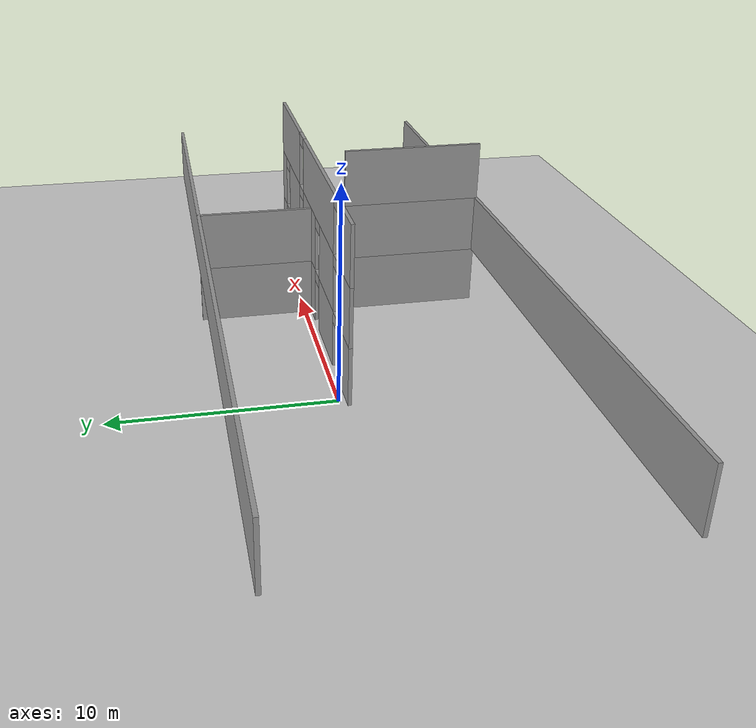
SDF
<sdf version="1.7">
 <world name="default">
  <model name="ground_plane">
   <static>1</static>
   <link name="link">
    <collision name="collision">
     <geometry><plane><normal>0 0 1</normal><size>100 100</size></plane></geometry>
     <surface>
      <contact><collide_bitmask>65535</collide_bitmask></contact>
      <friction><ode><mu>100</mu><mu2>50</mu2></ode></friction>
     </surface>
    </collision>
    <visual name="visual">
     <cast_shadows>0</cast_shadows>
     <geometry><plane><normal>0 0 1</normal><size>100 100</size></plane></geometry>
     <material>
      <script><uri>file://media/materials/scripts/gazebo.material</uri><name>Gazebo/Grey</name></script>
     </material>
    </visual>
   </link>
  </model>
  <model name="floor4plan_transp">
   <link name="Wall_105">
    <pose>3.98949 1.21683 7.5 0 -0 0</pose>
    <visual name="Wall_105_Visual_0">
     <pose>-7.04797 0 1.25 0 -0 0</pose>
     <geometry><box><size>2.06598 0.15 2.5</size></box></geometry>
     <material>
      <script><uri>file://media/materials/scripts/gazebo.material</uri><name>Gazebo/Grey</name></script>
      <ambient>1 1 1 1</ambient>
      <shader type="pixel"/>
     </material>
     <meta><layer>3</layer></meta>
    </visual>
    <visual name="Wall_105_Visual_1">
     <pose>-1.51338 0 1.25 0 -0 0</pose>
     <geometry><box><size>7.00319 0.15 2.5</size></box></geometry>
     <material>
      <script><uri>file://media/materials/scripts/gazebo.material</uri><name>Gazebo/Grey</name></script>
      <ambient>1 1 1 1</ambient>
      <shader type="pixel"/>
     </material>
     <meta><layer>3</layer></meta>
    </visual>
    <visual name="Wall_105_Visual_2">
     <pose>5.53458 0 1.25 0 -0 0</pose>
     <geometry><box><size>5.09275 0.15 2.5</size></box></geometry>
     <material>
      <script><uri>file://media/materials/scripts/gazebo.material</uri><name>Gazebo/Grey</name></script>
      <ambient>1 1 1 1</ambient>
      <shader type="pixel"/>
     </material>
     <meta><layer>3</layer></meta>
    </visual>
    <visual name="Wall_105_Visual_3">
     <pose>-5.51498 0 2.25 0 -0 0</pose>
     <geometry><box><size>1 0.15 0.5</size></box></geometry>
     <material>
      <script><uri>file://media/materials/scripts/gazebo.material</uri><name>Gazebo/Grey</name></script>
      <ambient>1 1 1 1</ambient>
      <shader type="pixel"/>
     </material>
     <meta><layer>3</layer></meta>
    </visual>
    <visual name="Wall_105_Visual_4">
     <pose>2.48821 0 2.25 0 -0 0</pose>
     <geometry><box><size>1 0.15 0.5</size></box></geometry>
     <material>
      <script><uri>file://media/materials/scripts/gazebo.material</uri><name>Gazebo/Grey</name></script>
      <ambient>1 1 1 1</ambient>
      <shader type="pixel"/>
     </material>
     <meta><layer>3</layer></meta>
    </visual>
    <collision name="Wall_105_Collision_0">
     <pose>-7.04797 0 1.25 0 -0 0</pose>
     <geometry><box><size>2.06598 0.15 2.5</size></box></geometry>
     <surface>
      <friction>
       <ode><mu>1</mu><mu2>1</mu2><fdir1>0 0 0</fdir1><slip1>0</slip1><slip2>0</slip2></ode>
       <torsional>
        <coefficient>1</coefficient>
        <patch_radius>0</patch_radius>
        <surface_radius>0</surface_radius>
        <use_patch_radius>1</use_patch_radius>
        <ode><slip>0</slip></ode>
       </torsional>
      </friction>
      <bounce><restitution_coefficient>0</restitution_coefficient><threshold>1e+06</threshold></bounce>
      <contact>
       <collide_without_contact>0</collide_without_contact>
       <collide_without_contact_bitmask>1</collide_without_contact_bitmask>
       <collide_bitmask>1</collide_bitmask>
       <ode>
        <soft_cfm>0</soft_cfm>
        <soft_erp>0.2</soft_erp>
        <kp>1e+13</kp>
        <kd>1</kd>
        <max_vel>0.01</max_vel>
        <min_depth>0</min_depth>
       </ode>
       <bullet>
        <split_impulse>1</split_impulse>
        <split_impulse_penetration_threshold>-0.01</split_impulse_penetration_threshold>
        <soft_cfm>0</soft_cfm>
        <soft_erp>0.2</soft_erp>
        <kp>1e+13</kp>
        <kd>1</kd>
       </bullet>
      </contact>
     </surface>
    </collision>
    <collision name="Wall_105_Collision_1">
     <pose>-1.51338 0 1.25 0 -0 0</pose>
     <geometry><box><size>7.00319 0.15 2.5</size></box></geometry>
     <surface>
      <friction>
       <ode><mu>1</mu><mu2>1</mu2><fdir1>0 0 0</fdir1><slip1>0</slip1><slip2>0</slip2></ode>
       <torsional>
        <coefficient>1</coefficient>
        <patch_radius>0</patch_radius>
        <surface_radius>0</surface_radius>
        <use_patch_radius>1</use_patch_radius>
        <ode><slip>0</slip></ode>
       </torsional>
      </friction>
      <bounce><restitution_coefficient>0</restitution_coefficient><threshold>1e+06</threshold></bounce>
      <contact>
       <collide_without_contact>0</collide_without_contact>
       <collide_without_contact_bitmask>1</collide_without_contact_bitmask>
       <collide_bitmask>1</collide_bitmask>
       <ode>
        <soft_cfm>0</soft_cfm>
        <soft_erp>0.2</soft_erp>
        <kp>1e+13</kp>
        <kd>1</kd>
        <max_vel>0.01</max_vel>
        <min_depth>0</min_depth>
       </ode>
       <bullet>
        <split_impulse>1</split_impulse>
        <split_impulse_penetration_threshold>-0.01</split_impulse_penetration_threshold>
        <soft_cfm>0</soft_cfm>
        <soft_erp>0.2</soft_erp>
        <kp>1e+13</kp>
        <kd>1</kd>
       </bullet>
      </contact>
     </surface>
    </collision>
    <collision name="Wall_105_Collision_2">
     <pose>5.53458 0 1.25 0 -0 0</pose>
     <geometry><box><size>5.09275 0.15 2.5</size></box></geometry>
     <surface>
      <friction>
       <ode><mu>1</mu><mu2>1</mu2><fdir1>0 0 0</fdir1><slip1>0</slip1><slip2>0</slip2></ode>
       <torsional>
        <coefficient>1</coefficient>
        <patch_radius>0</patch_radius>
        <surface_radius>0</surface_radius>
        <use_patch_radius>1</use_patch_radius>
        <ode><slip>0</slip></ode>
       </torsional>
      </friction>
      <bounce><restitution_coefficient>0</restitution_coefficient><threshold>1e+06</threshold></bounce>
      <contact>
       <collide_without_contact>0</collide_without_contact>
       <collide_without_contact_bitmask>1</collide_without_contact_bitmask>
       <collide_bitmask>1</collide_bitmask>
       <ode>
        <soft_cfm>0</soft_cfm>
        <soft_erp>0.2</soft_erp>
        <kp>1e+13</kp>
        <kd>1</kd>
        <max_vel>0.01</max_vel>
        <min_depth>0</min_depth>
       </ode>
       <bullet>
        <split_impulse>1</split_impulse>
        <split_impulse_penetration_threshold>-0.01</split_impulse_penetration_threshold>
        <soft_cfm>0</soft_cfm>
        <soft_erp>0.2</soft_erp>
        <kp>1e+13</kp>
        <kd>1</kd>
       </bullet>
      </contact>
     </surface>
    </collision>
    <collision name="Wall_105_Collision_3">
     <pose>-5.51498 0 2.25 0 -0 0</pose>
     <geometry><box><size>1 0.15 0.5</size></box></geometry>
     <surface>
      <friction>
       <ode><mu>1</mu><mu2>1</mu2><fdir1>0 0 0</fdir1><slip1>0</slip1><slip2>0</slip2></ode>
       <torsional>
        <coefficient>1</coefficient>
        <patch_radius>0</patch_radius>
        <surface_radius>0</surface_radius>
        <use_patch_radius>1</use_patch_radius>
        <ode><slip>0</slip></ode>
       </torsional>
      </friction>
      <bounce><restitution_coefficient>0</restitution_coefficient><threshold>1e+06</threshold></bounce>
      <contact>
       <collide_without_contact>0</collide_without_contact>
       <collide_without_contact_bitmask>1</collide_without_contact_bitmask>
       <collide_bitmask>1</collide_bitmask>
       <ode>
        <soft_cfm>0</soft_cfm>
        <soft_erp>0.2</soft_erp>
        <kp>1e+13</kp>
        <kd>1</kd>
        <max_vel>0.01</max_vel>
        <min_depth>0</min_depth>
       </ode>
       <bullet>
        <split_impulse>1</split_impulse>
        <split_impulse_penetration_threshold>-0.01</split_impulse_penetration_threshold>
        <soft_cfm>0</soft_cfm>
        <soft_erp>0.2</soft_erp>
        <kp>1e+13</kp>
        <kd>1</kd>
       </bullet>
      </contact>
     </surface>
    </collision>
    <collision name="Wall_105_Collision_4">
     <pose>2.48821 0 2.25 0 -0 0</pose>
     <geometry><box><size>1 0.15 0.5</size></box></geometry>
     <surface>
      <friction>
       <ode><mu>1</mu><mu2>1</mu2><fdir1>0 0 0</fdir1><slip1>0</slip1><slip2>0</slip2></ode>
       <torsional>
        <coefficient>1</coefficient>
        <patch_radius>0</patch_radius>
        <surface_radius>0</surface_radius>
        <use_patch_radius>1</use_patch_radius>
        <ode><slip>0</slip></ode>
       </torsional>
      </friction>
      <bounce><restitution_coefficient>0</restitution_coefficient><threshold>1e+06</threshold></bounce>
      <contact>
       <collide_without_contact>0</collide_without_contact>
       <collide_without_contact_bitmask>1</collide_without_contact_bitmask>
       <collide_bitmask>1</collide_bitmask>
       <ode>
        <soft_cfm>0</soft_cfm>
        <soft_erp>0.2</soft_erp>
        <kp>1e+13</kp>
        <kd>1</kd>
        <max_vel>0.01</max_vel>
        <min_depth>0</min_depth>
       </ode>
       <bullet>
        <split_impulse>1</split_impulse>
        <split_impulse_penetration_threshold>-0.01</split_impulse_penetration_threshold>
        <soft_cfm>0</soft_cfm>
        <soft_erp>0.2</soft_erp>
        <kp>1e+13</kp>
        <kd>1</kd>
       </bullet>
      </contact>
     </surface>
    </collision>
   </link>
   <link name="Wall_120">
    <pose>3.95647 -3.18853 7.5 0 0 -1.5708</pose>
    <visual name="Wall_120_Visual">
     <pose>0 0 1.25 0 -0 0</pose>
     <geometry><box><size>6 0.15 2.5</size></box></geometry>
     <material>
      <script><uri>file://media/materials/scripts/gazebo.material</uri><name>Gazebo/Grey</name></script>
      <ambient>1 1 1 1</ambient>
      <shader type="pixel"/>
     </material>
     <meta><layer>3</layer></meta>
    </visual>
    <collision name="Wall_120_Collision">
     <pose>0 0 1.25 0 -0 0</pose>
     <geometry><box><size>6 0.15 2.5</size></box></geometry>
     <surface>
      <friction>
       <ode><mu>1</mu><mu2>1</mu2><fdir1>0 0 0</fdir1><slip1>0</slip1><slip2>0</slip2></ode>
       <torsional>
        <coefficient>1</coefficient>
        <patch_radius>0</patch_radius>
        <surface_radius>0</surface_radius>
        <use_patch_radius>1</use_patch_radius>
        <ode><slip>0</slip></ode>
       </torsional>
      </friction>
      <bounce><restitution_coefficient>0</restitution_coefficient><threshold>1e+06</threshold></bounce>
      <contact>
       <collide_without_contact>0</collide_without_contact>
       <collide_without_contact_bitmask>1</collide_without_contact_bitmask>
       <collide_bitmask>1</collide_bitmask>
       <ode>
        <soft_cfm>0</soft_cfm>
        <soft_erp>0.2</soft_erp>
        <kp>1e+13</kp>
        <kd>1</kd>
        <max_vel>0.01</max_vel>
        <min_depth>0</min_depth>
       </ode>
       <bullet>
        <split_impulse>1</split_impulse>
        <split_impulse_penetration_threshold>-0.01</split_impulse_penetration_threshold>
        <soft_cfm>0</soft_cfm>
        <soft_erp>0.2</soft_erp>
        <kp>1e+13</kp>
        <kd>1</kd>
       </bullet>
      </contact>
     </surface>
    </collision>
   </link>
   <link name="Wall_55">
    <pose>3.98949 1.21683 2.5 0 -0 0</pose>
    <visual name="Wall_55_Visual_0">
     <pose>-7.04797 0 1.25 0 -0 0</pose>
     <geometry><box><size>2.06598 0.15 2.5</size></box></geometry>
     <material>
      <script><uri>file://media/materials/scripts/gazebo.material</uri><name>Gazebo/Grey</name></script>
      <ambient>1 1 1 1</ambient>
      <shader type="pixel"/>
     </material>
     <meta><layer>1</layer></meta>
    </visual>
    <visual name="Wall_55_Visual_1">
     <pose>-3.50262 0 1.25 0 -0 0</pose>
     <geometry><box><size>3.02473 0.15 2.5</size></box></geometry>
     <material>
      <script><uri>file://media/materials/scripts/gazebo.material</uri><name>Gazebo/Grey</name></script>
      <ambient>1 1 1 1</ambient>
      <shader type="pixel"/>
     </material>
     <meta><layer>1</layer></meta>
    </visual>
    <visual name="Wall_55_Visual_2">
     <pose>0.510543 0 1.25 0 -0 0</pose>
     <geometry><box><size>3.0016 0.15 2.5</size></box></geometry>
     <material>
      <script><uri>file://media/materials/scripts/gazebo.material</uri><name>Gazebo/Grey</name></script>
      <ambient>1 1 1 1</ambient>
      <shader type="pixel"/>
     </material>
     <meta><layer>1</layer></meta>
    </visual>
    <visual name="Wall_55_Visual_3">
     <pose>4.50057 0 1.25 0 -0 0</pose>
     <geometry><box><size>2.97846 0.15 2.5</size></box></geometry>
     <material>
      <script><uri>file://media/materials/scripts/gazebo.material</uri><name>Gazebo/Grey</name></script>
      <ambient>1 1 1 1</ambient>
      <shader type="pixel"/>
     </material>
     <meta><layer>1</layer></meta>
    </visual>
    <visual name="Wall_55_Visual_4">
     <pose>7.53538 0 1.25 0 -0 0</pose>
     <geometry><box><size>1.09115 0.15 2.5</size></box></geometry>
     <material>
      <script><uri>file://media/materials/scripts/gazebo.material</uri><name>Gazebo/Grey</name></script>
      <ambient>1 1 1 1</ambient>
      <shader type="pixel"/>
     </material>
     <meta><layer>1</layer></meta>
    </visual>
    <visual name="Wall_55_Visual_5">
     <pose>-5.51498 0 2.25 0 -0 0</pose>
     <geometry><box><size>1 0.15 0.5</size></box></geometry>
     <material>
      <script><uri>file://media/materials/scripts/gazebo.material</uri><name>Gazebo/Grey</name></script>
      <ambient>1 1 1 1</ambient>
      <shader type="pixel"/>
     </material>
     <meta><layer>1</layer></meta>
    </visual>
    <visual name="Wall_55_Visual_6">
     <pose>-1.49026 0 2.25 0 -0 0</pose>
     <geometry><box><size>1 0.15 0.5</size></box></geometry>
     <material>
      <script><uri>file://media/materials/scripts/gazebo.material</uri><name>Gazebo/Grey</name></script>
      <ambient>1 1 1 1</ambient>
      <shader type="pixel"/>
     </material>
     <meta><layer>1</layer></meta>
    </visual>
    <visual name="Wall_55_Visual_7">
     <pose>2.51134 0 2.25 0 -0 0</pose>
     <geometry><box><size>1 0.15 0.5</size></box></geometry>
     <material>
      <script><uri>file://media/materials/scripts/gazebo.material</uri><name>Gazebo/Grey</name></script>
      <ambient>1 1 1 1</ambient>
      <shader type="pixel"/>
     </material>
     <meta><layer>1</layer></meta>
    </visual>
    <visual name="Wall_55_Visual_8">
     <pose>6.4898 0 2.25 0 -0 0</pose>
     <geometry><box><size>1 0.15 0.5</size></box></geometry>
     <material>
      <script><uri>file://media/materials/scripts/gazebo.material</uri><name>Gazebo/Grey</name></script>
      <ambient>1 1 1 1</ambient>
      <shader type="pixel"/>
     </material>
     <meta><layer>1</layer></meta>
    </visual>
    <collision name="Wall_55_Collision_0">
     <pose>-7.04797 0 1.25 0 -0 0</pose>
     <geometry><box><size>2.06598 0.15 2.5</size></box></geometry>
     <surface>
      <friction>
       <ode><mu>1</mu><mu2>1</mu2><fdir1>0 0 0</fdir1><slip1>0</slip1><slip2>0</slip2></ode>
       <torsional>
        <coefficient>1</coefficient>
        <patch_radius>0</patch_radius>
        <surface_radius>0</surface_radius>
        <use_patch_radius>1</use_patch_radius>
        <ode><slip>0</slip></ode>
       </torsional>
      </friction>
      <bounce><restitution_coefficient>0</restitution_coefficient><threshold>1e+06</threshold></bounce>
      <contact>
       <collide_without_contact>0</collide_without_contact>
       <collide_without_contact_bitmask>1</collide_without_contact_bitmask>
       <collide_bitmask>1</collide_bitmask>
       <ode>
        <soft_cfm>0</soft_cfm>
        <soft_erp>0.2</soft_erp>
        <kp>1e+13</kp>
        <kd>1</kd>
        <max_vel>0.01</max_vel>
        <min_depth>0</min_depth>
       </ode>
       <bullet>
        <split_impulse>1</split_impulse>
        <split_impulse_penetration_threshold>-0.01</split_impulse_penetration_threshold>
        <soft_cfm>0</soft_cfm>
        <soft_erp>0.2</soft_erp>
        <kp>1e+13</kp>
        <kd>1</kd>
       </bullet>
      </contact>
     </surface>
    </collision>
    <collision name="Wall_55_Collision_1">
     <pose>-3.50262 0 1.25 0 -0 0</pose>
     <geometry><box><size>3.02473 0.15 2.5</size></box></geometry>
     <surface>
      <friction>
       <ode><mu>1</mu><mu2>1</mu2><fdir1>0 0 0</fdir1><slip1>0</slip1><slip2>0</slip2></ode>
       <torsional>
        <coefficient>1</coefficient>
        <patch_radius>0</patch_radius>
        <surface_radius>0</surface_radius>
        <use_patch_radius>1</use_patch_radius>
        <ode><slip>0</slip></ode>
       </torsional>
      </friction>
      <bounce><restitution_coefficient>0</restitution_coefficient><threshold>1e+06</threshold></bounce>
      <contact>
       <collide_without_contact>0</collide_without_contact>
       <collide_without_contact_bitmask>1</collide_without_contact_bitmask>
       <collide_bitmask>1</collide_bitmask>
       <ode>
        <soft_cfm>0</soft_cfm>
        <soft_erp>0.2</soft_erp>
        <kp>1e+13</kp>
        <kd>1</kd>
        <max_vel>0.01</max_vel>
        <min_depth>0</min_depth>
       </ode>
       <bullet>
        <split_impulse>1</split_impulse>
        <split_impulse_penetration_threshold>-0.01</split_impulse_penetration_threshold>
        <soft_cfm>0</soft_cfm>
        <soft_erp>0.2</soft_erp>
        <kp>1e+13</kp>
        <kd>1</kd>
       </bullet>
      </contact>
     </surface>
    </collision>
    <collision name="Wall_55_Collision_3">
     <pose>4.50057 0 1.25 0 -0 0</pose>
     <geometry><box><size>2.97846 0.15 2.5</size></box></geometry>
     <surface>
      <friction>
       <ode><mu>1</mu><mu2>1</mu2><fdir1>0 0 0</fdir1><slip1>0</slip1><slip2>0</slip2></ode>
       <torsional>
        <coefficient>1</coefficient>
        <patch_radius>0</patch_radius>
        <surface_radius>0</surface_radius>
        <use_patch_radius>1</use_patch_radius>
        <ode><slip>0</slip></ode>
       </torsional>
      </friction>
      <bounce><restitution_coefficient>0</restitution_coefficient><threshold>1e+06</threshold></bounce>
      <contact>
       <collide_without_contact>0</collide_without_contact>
       <collide_without_contact_bitmask>1</collide_without_contact_bitmask>
       <collide_bitmask>1</collide_bitmask>
       <ode>
        <soft_cfm>0</soft_cfm>
        <soft_erp>0.2</soft_erp>
        <kp>1e+13</kp>
        <kd>1</kd>
        <max_vel>0.01</max_vel>
        <min_depth>0</min_depth>
       </ode>
       <bullet>
        <split_impulse>1</split_impulse>
        <split_impulse_penetration_threshold>-0.01</split_impulse_penetration_threshold>
        <soft_cfm>0</soft_cfm>
        <soft_erp>0.2</soft_erp>
        <kp>1e+13</kp>
        <kd>1</kd>
       </bullet>
      </contact>
     </surface>
    </collision>
    <collision name="Wall_55_Collision_2">
     <pose>0.510543 0 1.25 0 -0 0</pose>
     <geometry><box><size>3.0016 0.15 2.5</size></box></geometry>
     <surface>
      <friction>
       <ode><mu>1</mu><mu2>1</mu2><fdir1>0 0 0</fdir1><slip1>0</slip1><slip2>0</slip2></ode>
       <torsional>
        <coefficient>1</coefficient>
        <patch_radius>0</patch_radius>
        <surface_radius>0</surface_radius>
        <use_patch_radius>1</use_patch_radius>
        <ode><slip>0</slip></ode>
       </torsional>
      </friction>
      <bounce><restitution_coefficient>0</restitution_coefficient><threshold>1e+06</threshold></bounce>
      <contact>
       <collide_without_contact>0</collide_without_contact>
       <collide_without_contact_bitmask>1</collide_without_contact_bitmask>
       <collide_bitmask>1</collide_bitmask>
       <ode>
        <soft_cfm>0</soft_cfm>
        <soft_erp>0.2</soft_erp>
        <kp>1e+13</kp>
        <kd>1</kd>
        <max_vel>0.01</max_vel>
        <min_depth>0</min_depth>
       </ode>
       <bullet>
        <split_impulse>1</split_impulse>
        <split_impulse_penetration_threshold>-0.01</split_impulse_penetration_threshold>
        <soft_cfm>0</soft_cfm>
        <soft_erp>0.2</soft_erp>
        <kp>1e+13</kp>
        <kd>1</kd>
       </bullet>
      </contact>
     </surface>
    </collision>
    <collision name="Wall_55_Collision_4">
     <pose>7.53538 0 1.25 0 -0 0</pose>
     <geometry><box><size>1.09115 0.15 2.5</size></box></geometry>
     <surface>
      <friction>
       <ode><mu>1</mu><mu2>1</mu2><fdir1>0 0 0</fdir1><slip1>0</slip1><slip2>0</slip2></ode>
       <torsional>
        <coefficient>1</coefficient>
        <patch_radius>0</patch_radius>
        <surface_radius>0</surface_radius>
        <use_patch_radius>1</use_patch_radius>
        <ode><slip>0</slip></ode>
       </torsional>
      </friction>
      <bounce><restitution_coefficient>0</restitution_coefficient><threshold>1e+06</threshold></bounce>
      <contact>
       <collide_without_contact>0</collide_without_contact>
       <collide_without_contact_bitmask>1</collide_without_contact_bitmask>
       <collide_bitmask>1</collide_bitmask>
       <ode>
        <soft_cfm>0</soft_cfm>
        <soft_erp>0.2</soft_erp>
        <kp>1e+13</kp>
        <kd>1</kd>
        <max_vel>0.01</max_vel>
        <min_depth>0</min_depth>
       </ode>
       <bullet>
        <split_impulse>1</split_impulse>
        <split_impulse_penetration_threshold>-0.01</split_impulse_penetration_threshold>
        <soft_cfm>0</soft_cfm>
        <soft_erp>0.2</soft_erp>
        <kp>1e+13</kp>
        <kd>1</kd>
       </bullet>
      </contact>
     </surface>
    </collision>
    <collision name="Wall_55_Collision_5">
     <pose>-5.51498 0 2.25 0 -0 0</pose>
     <geometry><box><size>1 0.15 0.5</size></box></geometry>
     <surface>
      <friction>
       <ode><mu>1</mu><mu2>1</mu2><fdir1>0 0 0</fdir1><slip1>0</slip1><slip2>0</slip2></ode>
       <torsional>
        <coefficient>1</coefficient>
        <patch_radius>0</patch_radius>
        <surface_radius>0</surface_radius>
        <use_patch_radius>1</use_patch_radius>
        <ode><slip>0</slip></ode>
       </torsional>
      </friction>
      <bounce><restitution_coefficient>0</restitution_coefficient><threshold>1e+06</threshold></bounce>
      <contact>
       <collide_without_contact>0</collide_without_contact>
       <collide_without_contact_bitmask>1</collide_without_contact_bitmask>
       <collide_bitmask>1</collide_bitmask>
       <ode>
        <soft_cfm>0</soft_cfm>
        <soft_erp>0.2</soft_erp>
        <kp>1e+13</kp>
        <kd>1</kd>
        <max_vel>0.01</max_vel>
        <min_depth>0</min_depth>
       </ode>
       <bullet>
        <split_impulse>1</split_impulse>
        <split_impulse_penetration_threshold>-0.01</split_impulse_penetration_threshold>
        <soft_cfm>0</soft_cfm>
        <soft_erp>0.2</soft_erp>
        <kp>1e+13</kp>
        <kd>1</kd>
       </bullet>
      </contact>
     </surface>
    </collision>
    <collision name="Wall_55_Collision_6">
     <pose>-1.49026 0 2.25 0 -0 0</pose>
     <geometry><box><size>1 0.15 0.5</size></box></geometry>
     <surface>
      <friction>
       <ode><mu>1</mu><mu2>1</mu2><fdir1>0 0 0</fdir1><slip1>0</slip1><slip2>0</slip2></ode>
       <torsional>
        <coefficient>1</coefficient>
        <patch_radius>0</patch_radius>
        <surface_radius>0</surface_radius>
        <use_patch_radius>1</use_patch_radius>
        <ode><slip>0</slip></ode>
       </torsional>
      </friction>
      <bounce><restitution_coefficient>0</restitution_coefficient><threshold>1e+06</threshold></bounce>
      <contact>
       <collide_without_contact>0</collide_without_contact>
       <collide_without_contact_bitmask>1</collide_without_contact_bitmask>
       <collide_bitmask>1</collide_bitmask>
       <ode>
        <soft_cfm>0</soft_cfm>
        <soft_erp>0.2</soft_erp>
        <kp>1e+13</kp>
        <kd>1</kd>
        <max_vel>0.01</max_vel>
        <min_depth>0</min_depth>
       </ode>
       <bullet>
        <split_impulse>1</split_impulse>
        <split_impulse_penetration_threshold>-0.01</split_impulse_penetration_threshold>
        <soft_cfm>0</soft_cfm>
        <soft_erp>0.2</soft_erp>
        <kp>1e+13</kp>
        <kd>1</kd>
       </bullet>
      </contact>
     </surface>
    </collision>
    <collision name="Wall_55_Collision_7">
     <pose>2.51134 0 2.25 0 -0 0</pose>
     <geometry><box><size>1 0.15 0.5</size></box></geometry>
     <surface>
      <friction>
       <ode><mu>1</mu><mu2>1</mu2><fdir1>0 0 0</fdir1><slip1>0</slip1><slip2>0</slip2></ode>
       <torsional>
        <coefficient>1</coefficient>
        <patch_radius>0</patch_radius>
        <surface_radius>0</surface_radius>
        <use_patch_radius>1</use_patch_radius>
        <ode><slip>0</slip></ode>
       </torsional>
      </friction>
      <bounce><restitution_coefficient>0</restitution_coefficient><threshold>1e+06</threshold></bounce>
      <contact>
       <collide_without_contact>0</collide_without_contact>
       <collide_without_contact_bitmask>1</collide_without_contact_bitmask>
       <collide_bitmask>1</collide_bitmask>
       <ode>
        <soft_cfm>0</soft_cfm>
        <soft_erp>0.2</soft_erp>
        <kp>1e+13</kp>
        <kd>1</kd>
        <max_vel>0.01</max_vel>
        <min_depth>0</min_depth>
       </ode>
       <bullet>
        <split_impulse>1</split_impulse>
        <split_impulse_penetration_threshold>-0.01</split_impulse_penetration_threshold>
        <soft_cfm>0</soft_cfm>
        <soft_erp>0.2</soft_erp>
        <kp>1e+13</kp>
        <kd>1</kd>
       </bullet>
      </contact>
     </surface>
    </collision>
    <collision name="Wall_55_Collision_8">
     <pose>6.4898 0 2.25 0 -0 0</pose>
     <geometry><box><size>1 0.15 0.5</size></box></geometry>
     <surface>
      <friction>
       <ode><mu>1</mu><mu2>1</mu2><fdir1>0 0 0</fdir1><slip1>0</slip1><slip2>0</slip2></ode>
       <torsional>
        <coefficient>1</coefficient>
        <patch_radius>0</patch_radius>
        <surface_radius>0</surface_radius>
        <use_patch_radius>1</use_patch_radius>
        <ode><slip>0</slip></ode>
       </torsional>
      </friction>
      <bounce><restitution_coefficient>0</restitution_coefficient><threshold>1e+06</threshold></bounce>
      <contact>
       <collide_without_contact>0</collide_without_contact>
       <collide_without_contact_bitmask>1</collide_without_contact_bitmask>
       <collide_bitmask>1</collide_bitmask>
       <ode>
        <soft_cfm>0</soft_cfm>
        <soft_erp>0.2</soft_erp>
        <kp>1e+13</kp>
        <kd>1</kd>
        <max_vel>0.01</max_vel>
        <min_depth>0</min_depth>
       </ode>
       <bullet>
        <split_impulse>1</split_impulse>
        <split_impulse_penetration_threshold>-0.01</split_impulse_penetration_threshold>
        <soft_cfm>0</soft_cfm>
        <soft_erp>0.2</soft_erp>
        <kp>1e+13</kp>
        <kd>1</kd>
       </bullet>
      </contact>
     </surface>
    </collision>
   </link>
   <link name="Wall_61">
    <pose>3.95647 3.71865 2.5 0 0 -1.5708</pose>
    <visual name="Wall_61_Visual">
     <pose>0 0 1.25 0 -0 0</pose>
     <geometry><box><size>5 0.15 2.5</size></box></geometry>
     <material>
      <script><uri>file://media/materials/scripts/gazebo.material</uri><name>Gazebo/Grey</name></script>
      <ambient>1 1 1 1</ambient>
      <shader type="pixel"/>
     </material>
     <meta><layer>1</layer></meta>
    </visual>
    <collision name="Wall_61_Collision">
     <pose>0 0 1.25 0 -0 0</pose>
     <geometry><box><size>5 0.15 2.5</size></box></geometry>
     <surface>
      <friction>
       <ode><mu>1</mu><mu2>1</mu2><fdir1>0 0 0</fdir1><slip1>0</slip1><slip2>0</slip2></ode>
       <torsional>
        <coefficient>1</coefficient>
        <patch_radius>0</patch_radius>
        <surface_radius>0</surface_radius>
        <use_patch_radius>1</use_patch_radius>
        <ode><slip>0</slip></ode>
       </torsional>
      </friction>
      <bounce><restitution_coefficient>0</restitution_coefficient><threshold>1e+06</threshold></bounce>
      <contact>
       <collide_without_contact>0</collide_without_contact>
       <collide_without_contact_bitmask>1</collide_without_contact_bitmask>
       <collide_bitmask>1</collide_bitmask>
       <ode>
        <soft_cfm>0</soft_cfm>
        <soft_erp>0.2</soft_erp>
        <kp>1e+13</kp>
        <kd>1</kd>
        <max_vel>0.01</max_vel>
        <min_depth>0</min_depth>
       </ode>
       <bullet>
        <split_impulse>1</split_impulse>
        <split_impulse_penetration_threshold>-0.01</split_impulse_penetration_threshold>
        <soft_cfm>0</soft_cfm>
        <soft_erp>0.2</soft_erp>
        <kp>1e+13</kp>
        <kd>1</kd>
       </bullet>
      </contact>
     </surface>
    </collision>
   </link>
   <link name="Wall_70">
    <pose>3.95647 -3.18853 2.5 0 0 -1.5708</pose>
    <visual name="Wall_70_Visual">
     <pose>0 0 1.25 0 -0 0</pose>
     <geometry><box><size>6 0.15 2.5</size></box></geometry>
     <material>
      <script><uri>file://media/materials/scripts/gazebo.material</uri><name>Gazebo/Grey</name></script>
      <ambient>1 1 1 1</ambient>
      <shader type="pixel"/>
     </material>
     <meta><layer>1</layer></meta>
    </visual>
    <collision name="Wall_70_Collision">
     <pose>0 0 1.25 0 -0 0</pose>
     <geometry><box><size>6 0.15 2.5</size></box></geometry>
     <surface>
      <friction>
       <ode><mu>1</mu><mu2>1</mu2><fdir1>0 0 0</fdir1><slip1>0</slip1><slip2>0</slip2></ode>
       <torsional>
        <coefficient>1</coefficient>
        <patch_radius>0</patch_radius>
        <surface_radius>0</surface_radius>
        <use_patch_radius>1</use_patch_radius>
        <ode><slip>0</slip></ode>
       </torsional>
      </friction>
      <bounce><restitution_coefficient>0</restitution_coefficient><threshold>1e+06</threshold></bounce>
      <contact>
       <collide_without_contact>0</collide_without_contact>
       <collide_without_contact_bitmask>1</collide_without_contact_bitmask>
       <collide_bitmask>1</collide_bitmask>
       <ode>
        <soft_cfm>0</soft_cfm>
        <soft_erp>0.2</soft_erp>
        <kp>1e+13</kp>
        <kd>1</kd>
        <max_vel>0.01</max_vel>
        <min_depth>0</min_depth>
       </ode>
       <bullet>
        <split_impulse>1</split_impulse>
        <split_impulse_penetration_threshold>-0.01</split_impulse_penetration_threshold>
        <soft_cfm>0</soft_cfm>
        <soft_erp>0.2</soft_erp>
        <kp>1e+13</kp>
        <kd>1</kd>
       </bullet>
      </contact>
     </surface>
    </collision>
   </link>
   <link name="Wall_75">
    <pose>0 6.175 5 0 -0 0</pose>
    <visual name="Wall_75_Visual">
     <pose>0 0 1.25 0 -0 0</pose>
     <geometry><box><size>32 0.15 2.5</size></box></geometry>
     <material>
      <script><uri>file://media/materials/scripts/gazebo.material</uri><name>Gazebo/Grey</name></script>
      <ambient>1 1 1 1</ambient>
      <shader type="pixel"/>
     </material>
     <meta><layer>2</layer></meta>
    </visual>
    <collision name="Wall_75_Collision">
     <pose>0 0 1.25 0 -0 0</pose>
     <geometry><box><size>32 0.15 2.5</size></box></geometry>
     <surface>
      <friction>
       <ode><mu>1</mu><mu2>1</mu2><fdir1>0 0 0</fdir1><slip1>0</slip1><slip2>0</slip2></ode>
       <torsional>
        <coefficient>1</coefficient>
        <patch_radius>0</patch_radius>
        <surface_radius>0</surface_radius>
        <use_patch_radius>1</use_patch_radius>
        <ode><slip>0</slip></ode>
       </torsional>
      </friction>
      <bounce><restitution_coefficient>0</restitution_coefficient><threshold>1e+06</threshold></bounce>
      <contact>
       <collide_without_contact>0</collide_without_contact>
       <collide_without_contact_bitmask>1</collide_without_contact_bitmask>
       <collide_bitmask>1</collide_bitmask>
       <ode>
        <soft_cfm>0</soft_cfm>
        <soft_erp>0.2</soft_erp>
        <kp>1e+13</kp>
        <kd>1</kd>
        <max_vel>0.01</max_vel>
        <min_depth>0</min_depth>
       </ode>
       <bullet>
        <split_impulse>1</split_impulse>
        <split_impulse_penetration_threshold>-0.01</split_impulse_penetration_threshold>
        <soft_cfm>0</soft_cfm>
        <soft_erp>0.2</soft_erp>
        <kp>1e+13</kp>
        <kd>1</kd>
       </bullet>
      </contact>
     </surface>
    </collision>
   </link>
   <link name="Wall_77">
    <pose>0 -6.175 5 0 -0 0</pose>
    <visual name="Wall_77_Visual">
     <pose>0 0 1.25 0 -0 0</pose>
     <geometry><box><size>32 0.15 2.5</size></box></geometry>
     <material>
      <script><uri>file://media/materials/scripts/gazebo.material</uri><name>Gazebo/Grey</name></script>
      <ambient>1 1 1 1</ambient>
      <shader type="pixel"/>
     </material>
     <meta><layer>2</layer></meta>
    </visual>
    <collision name="Wall_77_Collision">
     <pose>0 0 1.25 0 -0 0</pose>
     <geometry><box><size>32 0.15 2.5</size></box></geometry>
     <surface>
      <friction>
       <ode><mu>1</mu><mu2>1</mu2><fdir1>0 0 0</fdir1><slip1>0</slip1><slip2>0</slip2></ode>
       <torsional>
        <coefficient>1</coefficient>
        <patch_radius>0</patch_radius>
        <surface_radius>0</surface_radius>
        <use_patch_radius>1</use_patch_radius>
        <ode><slip>0</slip></ode>
       </torsional>
      </friction>
      <bounce><restitution_coefficient>0</restitution_coefficient><threshold>1e+06</threshold></bounce>
      <contact>
       <collide_without_contact>0</collide_without_contact>
       <collide_without_contact_bitmask>1</collide_without_contact_bitmask>
       <collide_bitmask>1</collide_bitmask>
       <ode>
        <soft_cfm>0</soft_cfm>
        <soft_erp>0.2</soft_erp>
        <kp>1e+13</kp>
        <kd>1</kd>
        <max_vel>0.01</max_vel>
        <min_depth>0</min_depth>
       </ode>
       <bullet>
        <split_impulse>1</split_impulse>
        <split_impulse_penetration_threshold>-0.01</split_impulse_penetration_threshold>
        <soft_cfm>0</soft_cfm>
        <soft_erp>0.2</soft_erp>
        <kp>1e+13</kp>
        <kd>1</kd>
       </bullet>
      </contact>
     </surface>
    </collision>
   </link>
   <link name="Wall_80">
    <pose>3.98949 1.21683 5 0 -0 0</pose>
    <visual name="Wall_80_Visual_0">
     <pose>-7.04797 0 1.25 0 -0 0</pose>
     <geometry><box><size>2.06598 0.15 2.5</size></box></geometry>
     <material>
      <script><uri>file://media/materials/scripts/gazebo.material</uri><name>Gazebo/Grey</name></script>
      <ambient>1 1 1 1</ambient>
      <shader type="pixel"/>
     </material>
     <meta><layer>2</layer></meta>
    </visual>
    <visual name="Wall_80_Visual_1">
     <pose>-3.50262 0 1.25 0 -0 0</pose>
     <geometry><box><size>3.02473 0.15 2.5</size></box></geometry>
     <material>
      <script><uri>file://media/materials/scripts/gazebo.material</uri><name>Gazebo/Grey</name></script>
      <ambient>1 1 1 1</ambient>
      <shader type="pixel"/>
     </material>
     <meta><layer>2</layer></meta>
    </visual>
    <visual name="Wall_80_Visual_2">
     <pose>0.498978 0 1.25 0 -0 0</pose>
     <geometry><box><size>2.97846 0.15 2.5</size></box></geometry>
     <material>
      <script><uri>file://media/materials/scripts/gazebo.material</uri><name>Gazebo/Grey</name></script>
      <ambient>1 1 1 1</ambient>
      <shader type="pixel"/>
     </material>
     <meta><layer>2</layer></meta>
    </visual>
    <visual name="Wall_80_Visual_3">
     <pose>4.47744 0 1.25 0 -0 0</pose>
     <geometry><box><size>2.97846 0.15 2.5</size></box></geometry>
     <material>
      <script><uri>file://media/materials/scripts/gazebo.material</uri><name>Gazebo/Grey</name></script>
      <ambient>1 1 1 1</ambient>
      <shader type="pixel"/>
     </material>
     <meta><layer>2</layer></meta>
    </visual>
    <visual name="Wall_80_Visual_4">
     <pose>7.52382 0 1.25 0 -0 0</pose>
     <geometry><box><size>1.11428 0.15 2.5</size></box></geometry>
     <material>
      <script><uri>file://media/materials/scripts/gazebo.material</uri><name>Gazebo/Grey</name></script>
      <ambient>1 1 1 1</ambient>
      <shader type="pixel"/>
     </material>
     <meta><layer>2</layer></meta>
    </visual>
    <visual name="Wall_80_Visual_5">
     <pose>-5.51498 0 2.25 0 -0 0</pose>
     <geometry><box><size>1 0.15 0.5</size></box></geometry>
     <material>
      <script><uri>file://media/materials/scripts/gazebo.material</uri><name>Gazebo/Grey</name></script>
      <ambient>1 1 1 1</ambient>
      <shader type="pixel"/>
     </material>
     <meta><layer>2</layer></meta>
    </visual>
    <visual name="Wall_80_Visual_6">
     <pose>-1.49026 0 2.25 0 -0 0</pose>
     <geometry><box><size>1 0.15 0.5</size></box></geometry>
     <material>
      <script><uri>file://media/materials/scripts/gazebo.material</uri><name>Gazebo/Grey</name></script>
      <ambient>1 1 1 1</ambient>
      <shader type="pixel"/>
     </material>
     <meta><layer>2</layer></meta>
    </visual>
    <visual name="Wall_80_Visual_7">
     <pose>2.48821 0 2.25 0 -0 0</pose>
     <geometry><box><size>1 0.15 0.5</size></box></geometry>
     <material>
      <script><uri>file://media/materials/scripts/gazebo.material</uri><name>Gazebo/Grey</name></script>
      <ambient>1 1 1 1</ambient>
      <shader type="pixel"/>
     </material>
     <meta><layer>2</layer></meta>
    </visual>
    <visual name="Wall_80_Visual_8">
     <pose>6.46667 0 2.25 0 -0 0</pose>
     <geometry><box><size>1 0.15 0.5</size></box></geometry>
     <material>
      <script><uri>file://media/materials/scripts/gazebo.material</uri><name>Gazebo/Grey</name></script>
      <ambient>1 1 1 1</ambient>
      <shader type="pixel"/>
     </material>
     <meta><layer>2</layer></meta>
    </visual>
    <collision name="Wall_80_Collision_0">
     <pose>-7.04797 0 1.25 0 -0 0</pose>
     <geometry><box><size>2.06598 0.15 2.5</size></box></geometry>
     <surface>
      <friction>
       <ode><mu>1</mu><mu2>1</mu2><fdir1>0 0 0</fdir1><slip1>0</slip1><slip2>0</slip2></ode>
       <torsional>
        <coefficient>1</coefficient>
        <patch_radius>0</patch_radius>
        <surface_radius>0</surface_radius>
        <use_patch_radius>1</use_patch_radius>
        <ode><slip>0</slip></ode>
       </torsional>
      </friction>
      <bounce><restitution_coefficient>0</restitution_coefficient><threshold>1e+06</threshold></bounce>
      <contact>
       <collide_without_contact>0</collide_without_contact>
       <collide_without_contact_bitmask>1</collide_without_contact_bitmask>
       <collide_bitmask>1</collide_bitmask>
       <ode>
        <soft_cfm>0</soft_cfm>
        <soft_erp>0.2</soft_erp>
        <kp>1e+13</kp>
        <kd>1</kd>
        <max_vel>0.01</max_vel>
        <min_depth>0</min_depth>
       </ode>
       <bullet>
        <split_impulse>1</split_impulse>
        <split_impulse_penetration_threshold>-0.01</split_impulse_penetration_threshold>
        <soft_cfm>0</soft_cfm>
        <soft_erp>0.2</soft_erp>
        <kp>1e+13</kp>
        <kd>1</kd>
       </bullet>
      </contact>
     </surface>
    </collision>
    <collision name="Wall_80_Collision_1">
     <pose>-3.50262 0 1.25 0 -0 0</pose>
     <geometry><box><size>3.02473 0.15 2.5</size></box></geometry>
     <surface>
      <friction>
       <ode><mu>1</mu><mu2>1</mu2><fdir1>0 0 0</fdir1><slip1>0</slip1><slip2>0</slip2></ode>
       <torsional>
        <coefficient>1</coefficient>
        <patch_radius>0</patch_radius>
        <surface_radius>0</surface_radius>
        <use_patch_radius>1</use_patch_radius>
        <ode><slip>0</slip></ode>
       </torsional>
      </friction>
      <bounce><restitution_coefficient>0</restitution_coefficient><threshold>1e+06</threshold></bounce>
      <contact>
       <collide_without_contact>0</collide_without_contact>
       <collide_without_contact_bitmask>1</collide_without_contact_bitmask>
       <collide_bitmask>1</collide_bitmask>
       <ode>
        <soft_cfm>0</soft_cfm>
        <soft_erp>0.2</soft_erp>
        <kp>1e+13</kp>
        <kd>1</kd>
        <max_vel>0.01</max_vel>
        <min_depth>0</min_depth>
       </ode>
       <bullet>
        <split_impulse>1</split_impulse>
        <split_impulse_penetration_threshold>-0.01</split_impulse_penetration_threshold>
        <soft_cfm>0</soft_cfm>
        <soft_erp>0.2</soft_erp>
        <kp>1e+13</kp>
        <kd>1</kd>
       </bullet>
      </contact>
     </surface>
    </collision>
    <collision name="Wall_80_Collision_2">
     <pose>0.498978 0 1.25 0 -0 0</pose>
     <geometry><box><size>2.97846 0.15 2.5</size></box></geometry>
     <surface>
      <friction>
       <ode><mu>1</mu><mu2>1</mu2><fdir1>0 0 0</fdir1><slip1>0</slip1><slip2>0</slip2></ode>
       <torsional>
        <coefficient>1</coefficient>
        <patch_radius>0</patch_radius>
        <surface_radius>0</surface_radius>
        <use_patch_radius>1</use_patch_radius>
        <ode><slip>0</slip></ode>
       </torsional>
      </friction>
      <bounce><restitution_coefficient>0</restitution_coefficient><threshold>1e+06</threshold></bounce>
      <contact>
       <collide_without_contact>0</collide_without_contact>
       <collide_without_contact_bitmask>1</collide_without_contact_bitmask>
       <collide_bitmask>1</collide_bitmask>
       <ode>
        <soft_cfm>0</soft_cfm>
        <soft_erp>0.2</soft_erp>
        <kp>1e+13</kp>
        <kd>1</kd>
        <max_vel>0.01</max_vel>
        <min_depth>0</min_depth>
       </ode>
       <bullet>
        <split_impulse>1</split_impulse>
        <split_impulse_penetration_threshold>-0.01</split_impulse_penetration_threshold>
        <soft_cfm>0</soft_cfm>
        <soft_erp>0.2</soft_erp>
        <kp>1e+13</kp>
        <kd>1</kd>
       </bullet>
      </contact>
     </surface>
    </collision>
    <collision name="Wall_80_Collision_3">
     <pose>4.47744 0 1.25 0 -0 0</pose>
     <geometry><box><size>2.97846 0.15 2.5</size></box></geometry>
     <surface>
      <friction>
       <ode><mu>1</mu><mu2>1</mu2><fdir1>0 0 0</fdir1><slip1>0</slip1><slip2>0</slip2></ode>
       <torsional>
        <coefficient>1</coefficient>
        <patch_radius>0</patch_radius>
        <surface_radius>0</surface_radius>
        <use_patch_radius>1</use_patch_radius>
        <ode><slip>0</slip></ode>
       </torsional>
      </friction>
      <bounce><restitution_coefficient>0</restitution_coefficient><threshold>1e+06</threshold></bounce>
      <contact>
       <collide_without_contact>0</collide_without_contact>
       <collide_without_contact_bitmask>1</collide_without_contact_bitmask>
       <collide_bitmask>1</collide_bitmask>
       <ode>
        <soft_cfm>0</soft_cfm>
        <soft_erp>0.2</soft_erp>
        <kp>1e+13</kp>
        <kd>1</kd>
        <max_vel>0.01</max_vel>
        <min_depth>0</min_depth>
       </ode>
       <bullet>
        <split_impulse>1</split_impulse>
        <split_impulse_penetration_threshold>-0.01</split_impulse_penetration_threshold>
        <soft_cfm>0</soft_cfm>
        <soft_erp>0.2</soft_erp>
        <kp>1e+13</kp>
        <kd>1</kd>
       </bullet>
      </contact>
     </surface>
    </collision>
    <collision name="Wall_80_Collision_4">
     <pose>7.52382 0 1.25 0 -0 0</pose>
     <geometry><box><size>1.11428 0.15 2.5</size></box></geometry>
     <surface>
      <friction>
       <ode><mu>1</mu><mu2>1</mu2><fdir1>0 0 0</fdir1><slip1>0</slip1><slip2>0</slip2></ode>
       <torsional>
        <coefficient>1</coefficient>
        <patch_radius>0</patch_radius>
        <surface_radius>0</surface_radius>
        <use_patch_radius>1</use_patch_radius>
        <ode><slip>0</slip></ode>
       </torsional>
      </friction>
      <bounce><restitution_coefficient>0</restitution_coefficient><threshold>1e+06</threshold></bounce>
      <contact>
       <collide_without_contact>0</collide_without_contact>
       <collide_without_contact_bitmask>1</collide_without_contact_bitmask>
       <collide_bitmask>1</collide_bitmask>
       <ode>
        <soft_cfm>0</soft_cfm>
        <soft_erp>0.2</soft_erp>
        <kp>1e+13</kp>
        <kd>1</kd>
        <max_vel>0.01</max_vel>
        <min_depth>0</min_depth>
       </ode>
       <bullet>
        <split_impulse>1</split_impulse>
        <split_impulse_penetration_threshold>-0.01</split_impulse_penetration_threshold>
        <soft_cfm>0</soft_cfm>
        <soft_erp>0.2</soft_erp>
        <kp>1e+13</kp>
        <kd>1</kd>
       </bullet>
      </contact>
     </surface>
    </collision>
    <collision name="Wall_80_Collision_5">
     <pose>-5.51498 0 2.25 0 -0 0</pose>
     <geometry><box><size>1 0.15 0.5</size></box></geometry>
     <surface>
      <friction>
       <ode><mu>1</mu><mu2>1</mu2><fdir1>0 0 0</fdir1><slip1>0</slip1><slip2>0</slip2></ode>
       <torsional>
        <coefficient>1</coefficient>
        <patch_radius>0</patch_radius>
        <surface_radius>0</surface_radius>
        <use_patch_radius>1</use_patch_radius>
        <ode><slip>0</slip></ode>
       </torsional>
      </friction>
      <bounce><restitution_coefficient>0</restitution_coefficient><threshold>1e+06</threshold></bounce>
      <contact>
       <collide_without_contact>0</collide_without_contact>
       <collide_without_contact_bitmask>1</collide_without_contact_bitmask>
       <collide_bitmask>1</collide_bitmask>
       <ode>
        <soft_cfm>0</soft_cfm>
        <soft_erp>0.2</soft_erp>
        <kp>1e+13</kp>
        <kd>1</kd>
        <max_vel>0.01</max_vel>
        <min_depth>0</min_depth>
       </ode>
       <bullet>
        <split_impulse>1</split_impulse>
        <split_impulse_penetration_threshold>-0.01</split_impulse_penetration_threshold>
        <soft_cfm>0</soft_cfm>
        <soft_erp>0.2</soft_erp>
        <kp>1e+13</kp>
        <kd>1</kd>
       </bullet>
      </contact>
     </surface>
    </collision>
    <collision name="Wall_80_Collision_7">
     <pose>2.48821 0 2.25 0 -0 0</pose>
     <geometry><box><size>1 0.15 0.5</size></box></geometry>
     <surface>
      <friction>
       <ode><mu>1</mu><mu2>1</mu2><fdir1>0 0 0</fdir1><slip1>0</slip1><slip2>0</slip2></ode>
       <torsional>
        <coefficient>1</coefficient>
        <patch_radius>0</patch_radius>
        <surface_radius>0</surface_radius>
        <use_patch_radius>1</use_patch_radius>
        <ode><slip>0</slip></ode>
       </torsional>
      </friction>
      <bounce><restitution_coefficient>0</restitution_coefficient><threshold>1e+06</threshold></bounce>
      <contact>
       <collide_without_contact>0</collide_without_contact>
       <collide_without_contact_bitmask>1</collide_without_contact_bitmask>
       <collide_bitmask>1</collide_bitmask>
       <ode>
        <soft_cfm>0</soft_cfm>
        <soft_erp>0.2</soft_erp>
        <kp>1e+13</kp>
        <kd>1</kd>
        <max_vel>0.01</max_vel>
        <min_depth>0</min_depth>
       </ode>
       <bullet>
        <split_impulse>1</split_impulse>
        <split_impulse_penetration_threshold>-0.01</split_impulse_penetration_threshold>
        <soft_cfm>0</soft_cfm>
        <soft_erp>0.2</soft_erp>
        <kp>1e+13</kp>
        <kd>1</kd>
       </bullet>
      </contact>
     </surface>
    </collision>
    <collision name="Wall_80_Collision_6">
     <pose>-1.49026 0 2.25 0 -0 0</pose>
     <geometry><box><size>1 0.15 0.5</size></box></geometry>
     <surface>
      <friction>
       <ode><mu>1</mu><mu2>1</mu2><fdir1>0 0 0</fdir1><slip1>0</slip1><slip2>0</slip2></ode>
       <torsional>
        <coefficient>1</coefficient>
        <patch_radius>0</patch_radius>
        <surface_radius>0</surface_radius>
        <use_patch_radius>1</use_patch_radius>
        <ode><slip>0</slip></ode>
       </torsional>
      </friction>
      <bounce><restitution_coefficient>0</restitution_coefficient><threshold>1e+06</threshold></bounce>
      <contact>
       <collide_without_contact>0</collide_without_contact>
       <collide_without_contact_bitmask>1</collide_without_contact_bitmask>
       <collide_bitmask>1</collide_bitmask>
       <ode>
        <soft_cfm>0</soft_cfm>
        <soft_erp>0.2</soft_erp>
        <kp>1e+13</kp>
        <kd>1</kd>
        <max_vel>0.01</max_vel>
        <min_depth>0</min_depth>
       </ode>
       <bullet>
        <split_impulse>1</split_impulse>
        <split_impulse_penetration_threshold>-0.01</split_impulse_penetration_threshold>
        <soft_cfm>0</soft_cfm>
        <soft_erp>0.2</soft_erp>
        <kp>1e+13</kp>
        <kd>1</kd>
       </bullet>
      </contact>
     </surface>
    </collision>
    <collision name="Wall_80_Collision_8">
     <pose>6.46667 0 2.25 0 -0 0</pose>
     <geometry><box><size>1 0.15 0.5</size></box></geometry>
     <surface>
      <friction>
       <ode><mu>1</mu><mu2>1</mu2><fdir1>0 0 0</fdir1><slip1>0</slip1><slip2>0</slip2></ode>
       <torsional>
        <coefficient>1</coefficient>
        <patch_radius>0</patch_radius>
        <surface_radius>0</surface_radius>
        <use_patch_radius>1</use_patch_radius>
        <ode><slip>0</slip></ode>
       </torsional>
      </friction>
      <bounce><restitution_coefficient>0</restitution_coefficient><threshold>1e+06</threshold></bounce>
      <contact>
       <collide_without_contact>0</collide_without_contact>
       <collide_without_contact_bitmask>1</collide_without_contact_bitmask>
       <collide_bitmask>1</collide_bitmask>
       <ode>
        <soft_cfm>0</soft_cfm>
        <soft_erp>0.2</soft_erp>
        <kp>1e+13</kp>
        <kd>1</kd>
        <max_vel>0.01</max_vel>
        <min_depth>0</min_depth>
       </ode>
       <bullet>
        <split_impulse>1</split_impulse>
        <split_impulse_penetration_threshold>-0.01</split_impulse_penetration_threshold>
        <soft_cfm>0</soft_cfm>
        <soft_erp>0.2</soft_erp>
        <kp>1e+13</kp>
        <kd>1</kd>
       </bullet>
      </contact>
     </surface>
    </collision>
   </link>
   <link name="Wall_86">
    <pose>3.95647 3.71865 5 0 0 -1.5708</pose>
    <visual name="Wall_86_Visual">
     <pose>0 0 1.25 0 -0 0</pose>
     <geometry><box><size>5 0.15 2.5</size></box></geometry>
     <material>
      <script><uri>file://media/materials/scripts/gazebo.material</uri><name>Gazebo/Grey</name></script>
      <ambient>1 1 1 1</ambient>
      <shader type="pixel"/>
     </material>
     <meta><layer>2</layer></meta>
    </visual>
    <collision name="Wall_86_Collision">
     <pose>0 0 1.25 0 -0 0</pose>
     <geometry><box><size>5 0.15 2.5</size></box></geometry>
     <surface>
      <friction>
       <ode><mu>1</mu><mu2>1</mu2><fdir1>0 0 0</fdir1><slip1>0</slip1><slip2>0</slip2></ode>
       <torsional>
        <coefficient>1</coefficient>
        <patch_radius>0</patch_radius>
        <surface_radius>0</surface_radius>
        <use_patch_radius>1</use_patch_radius>
        <ode><slip>0</slip></ode>
       </torsional>
      </friction>
      <bounce><restitution_coefficient>0</restitution_coefficient><threshold>1e+06</threshold></bounce>
      <contact>
       <collide_without_contact>0</collide_without_contact>
       <collide_without_contact_bitmask>1</collide_without_contact_bitmask>
       <collide_bitmask>1</collide_bitmask>
       <ode>
        <soft_cfm>0</soft_cfm>
        <soft_erp>0.2</soft_erp>
        <kp>1e+13</kp>
        <kd>1</kd>
        <max_vel>0.01</max_vel>
        <min_depth>0</min_depth>
       </ode>
       <bullet>
        <split_impulse>1</split_impulse>
        <split_impulse_penetration_threshold>-0.01</split_impulse_penetration_threshold>
        <soft_cfm>0</soft_cfm>
        <soft_erp>0.2</soft_erp>
        <kp>1e+13</kp>
        <kd>1</kd>
       </bullet>
      </contact>
     </surface>
    </collision>
   </link>
   <link name="Wall_95">
    <pose>3.95647 -3.18853 5 0 0 -1.5708</pose>
    <visual name="Wall_95_Visual">
     <pose>0 0 1.25 0 -0 0</pose>
     <geometry><box><size>6 0.15 2.5</size></box></geometry>
     <material>
      <script><uri>file://media/materials/scripts/gazebo.material</uri><name>Gazebo/Grey</name></script>
      <ambient>1 1 1 1</ambient>
      <shader type="pixel"/>
     </material>
     <meta><layer>2</layer></meta>
    </visual>
    <collision name="Wall_95_Collision">
     <pose>0 0 1.25 0 -0 0</pose>
     <geometry><box><size>6 0.15 2.5</size></box></geometry>
     <surface>
      <friction>
       <ode><mu>1</mu><mu2>1</mu2><fdir1>0 0 0</fdir1><slip1>0</slip1><slip2>0</slip2></ode>
       <torsional>
        <coefficient>1</coefficient>
        <patch_radius>0</patch_radius>
        <surface_radius>0</surface_radius>
        <use_patch_radius>1</use_patch_radius>
        <ode><slip>0</slip></ode>
       </torsional>
      </friction>
      <bounce><restitution_coefficient>0</restitution_coefficient><threshold>1e+06</threshold></bounce>
      <contact>
       <collide_without_contact>0</collide_without_contact>
       <collide_without_contact_bitmask>1</collide_without_contact_bitmask>
       <collide_bitmask>1</collide_bitmask>
       <ode>
        <soft_cfm>0</soft_cfm>
        <soft_erp>0.2</soft_erp>
        <kp>1e+13</kp>
        <kd>1</kd>
        <max_vel>0.01</max_vel>
        <min_depth>0</min_depth>
       </ode>
       <bullet>
        <split_impulse>1</split_impulse>
        <split_impulse_penetration_threshold>-0.01</split_impulse_penetration_threshold>
        <soft_cfm>0</soft_cfm>
        <soft_erp>0.2</soft_erp>
        <kp>1e+13</kp>
        <kd>1</kd>
       </bullet>
      </contact>
     </surface>
    </collision>
   </link>
   <static>1</static>
   <pose>-0.046496 -0.776599 0 0 -0 0</pose>
  </model>
 </world>
</sdf>
